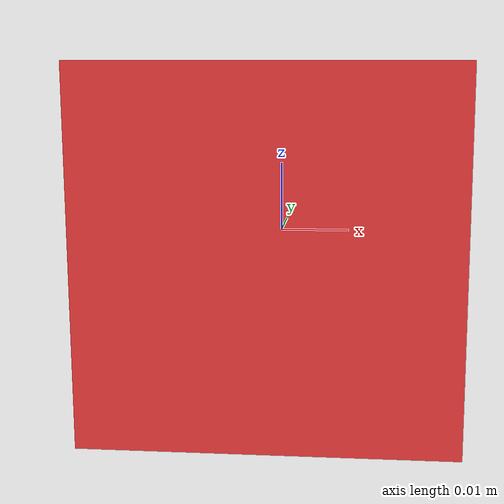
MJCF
<!-- 方块 0.05m 红色 -->
<mujoco model="cube">
  <worldbody>
    <body name="cube">
      <inertial mass="0.05" diaginertia="1.04e-5 1.04e-5 1.04e-5" pos="0 0 0"/>
      <geom name="cube_geom" type="box" size="0.025 0.025 0.025" rgba="0.85 0.2 0.2 1" friction="0.7 0.5 0.3"/>
      <site name="cube_center" pos="0 0 0"/>
    </body>
  </worldbody>
</mujoco>
